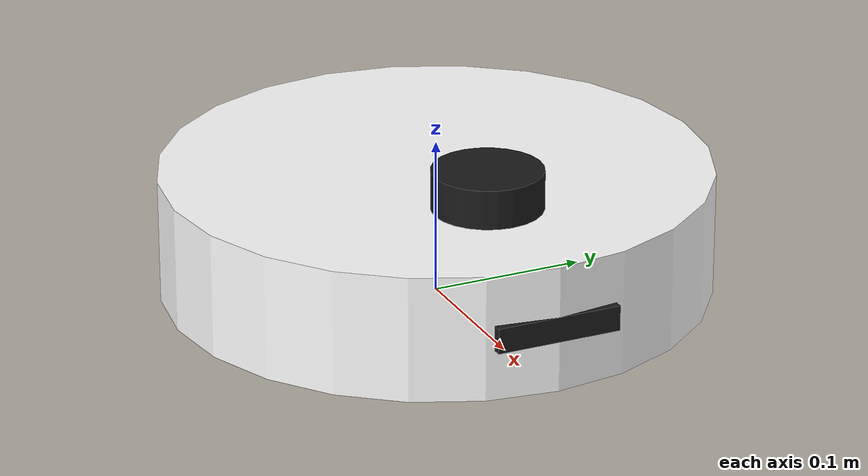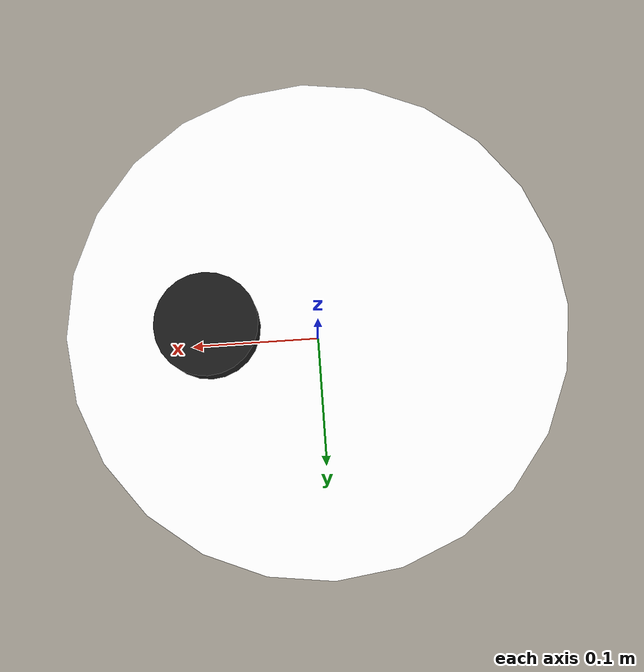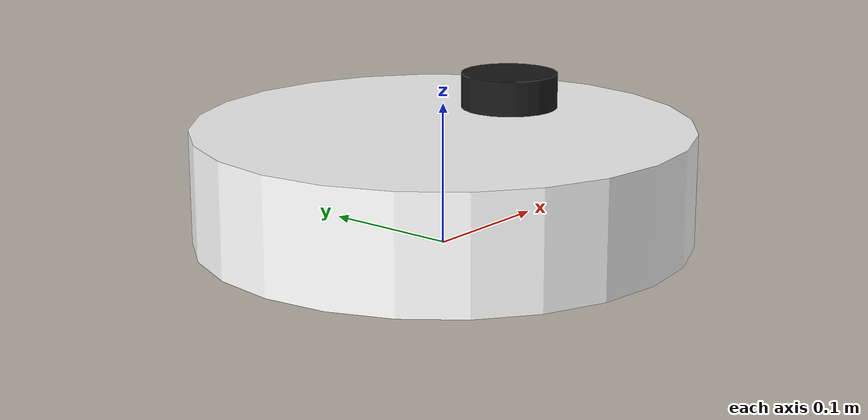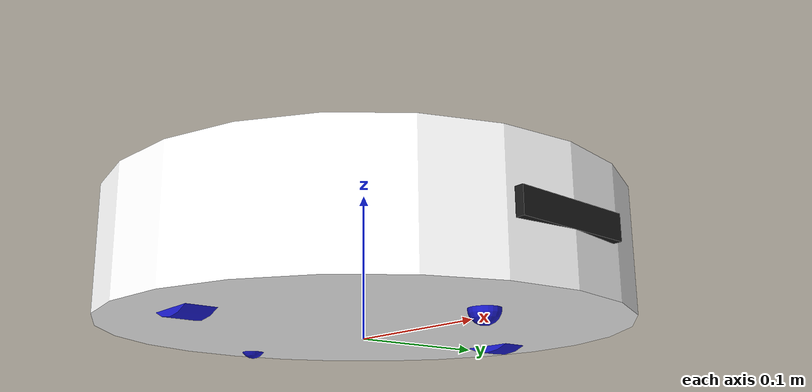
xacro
<?xml version="1.0"?>
<robot xmlns:xacro="http://www.ros.org/wiki/xacro" name="mercury">

<xacro:property name="chassis_radius"   value="0.175"/>
<xacro:property name="chassis_width"    value="0.16" />
<xacro:property name="chassis_length"   value="0.24" />
<xacro:property name="chassis_height"   value="0.08" />
<xacro:property name="wheel_separation" value="0.26" />
<xacro:property name="wheel_radius"     value="0.04" />
<xacro:property name="wheel_offset"     value="0.005" />
<xacro:property name="wheel_width"      value="0.02" />
<xacro:property name="sphere_radius"    value="0.01" />
<xacro:property name="caster_separation"    value="0.29" />
<xacro:property name="caster_offset"    value="-0.035" />
<xacro:property name="lidar_radius" value="0.035"/>
<xacro:property name="lidar_length" value="0.03"/>
<xacro:property name="camera_length" value="0.02"/>
<xacro:property name="camera_width" value="0.016"/>
<xacro:property name="camera_height" value="0.08"/>
<xacro:property name="base_offset"      value="0.00" />
<xacro:property name="footprint_z"      value="0.045" />

  <!-- LINKS -->
  <link name="base_footprint"/>

    <link name="base_link">
    <visual>
      <geometry>
        <cylinder length="${chassis_height}" radius="${chassis_radius}" />
      </geometry>
      <origin rpy="0 0 0" xyz="0 0 0"/>
      <material name="white">
        <color rgba="1 1 1 1"/>
      </material>
    </visual>

    <collision>
      <geometry>
        <cylinder length="${chassis_height}" radius="${chassis_radius}" />
      </geometry>
      <origin rpy="0 0 0" xyz="${base_offset} 0 0"/>
    </collision>

    <inertial>
      <mass value="4.2"/>
      <inertia ixx="0.034396" ixy="0.0" ixz="0.0" iyy="0.034396" iyz="0.0" izz="0.06431"/>
    </inertial>
  </link>

  <link name="left_wheel">
    <visual>
      <geometry>
        <cylinder length="${wheel_width}" radius="${wheel_radius}" />
      </geometry>
      <origin rpy="0 0 0" xyz="0 0 0"/>
      <material name="blue">
        <color rgba="0.1 0.1 0.8 1"/>
      </material>
    </visual>

    <collision>
      <geometry>
        <cylinder length="${wheel_width}" radius="${wheel_radius}" />
      </geometry>
      <origin rpy="0 0 0" xyz="0 0 0"/>
    </collision>

    <inertial>
      <mass value="0.1"/>
      <inertia ixx="0.00004333" ixy="0.0" ixz="0.0" iyy="0.00004333" iyz="0.0" izz="0.00008"/>
    </inertial>
  </link>

  <link name="right_wheel">
    <visual>
      <geometry>
        <cylinder length="${wheel_width}" radius="${wheel_radius}" />
      </geometry>
      <origin rpy="0 0 0" xyz="0 0 0"/>
      <material name="blue">
        <color rgba="0.1 0.1 0.8 1"/>
      </material>
    </visual>

    <collision>
      <geometry>
        <cylinder length="${wheel_width}" radius="${wheel_radius}" />
      </geometry>
      <origin rpy="0 0 0" xyz="0 0 0"/>
    </collision>

    <inertial>
      <mass value="0.1"/>
      <inertia ixx="0.00004333" ixy="0.0" ixz="0.0" iyy="0.00004333" iyz="0.0" izz="0.00008"/>
    </inertial>
  </link>

  <link name="front_caster">
    <visual>
      <geometry>
        <sphere radius="${sphere_radius}" />
      </geometry>
      <origin rpy="0 0 0" xyz="0 0 0"/>
      <material name="blue">
        <color rgba="0.1 0.1 0.8 1"/>
      </material>
    </visual>

    <collision>
      <geometry>
        <sphere radius="${sphere_radius}" />
      </geometry>
      <origin rpy="0 0 0" xyz="0 0 0"/>
    </collision>

    <inertial>
      <mass value="0.06"/>
      <inertia ixx="0.0000024" ixy="0.0" ixz="0.0" iyy="0.0000024" iyz="0.0" izz="0.0000024"/>
    </inertial>
  </link>

  <link name="back_caster">
    <visual>
      <geometry>
        <sphere radius="${sphere_radius}" />
      </geometry>
      <origin rpy="0 0 0" xyz="0 0 0"/>
      <material name="blue">
        <color rgba="0.1 0.1 0.8 1"/>
      </material>
    </visual>

    <collision>
      <geometry>
        <sphere radius="${sphere_radius}" />
      </geometry>
      <origin rpy="0 0 0" xyz="0 0 0"/>
    </collision>

    <inertial>
      <mass value="0.06"/>
      <inertia ixx="0.0000024" ixy="0.0" ixz="0.0" iyy="0.0000024" iyz="0.0" izz="0.0000024"/>
    </inertial>
  </link>

  <link name="imu_link">
  <!-- Frame to attach an IMU to -->
  </link>

  <link name="lidar_link">
    <visual>
      <geometry>
        <cylinder length="${lidar_length}" radius="${lidar_radius}" />
      </geometry>
      <origin rpy="0 0 0" xyz="0 0 -0.005"/>
      <material name="black">
        <color rgba="0.1 0.1 0.1 1"/>
      </material>
    </visual>

    <collision>
      <geometry>
        <cylinder length="${lidar_length}" radius="${lidar_radius}" />
      </geometry>
      <origin rpy="0 0 0" xyz="0 0 -0.005"/>
    </collision>

    <inertial>
      <mass value="0.2"/>
      <inertia ixx="0.00007625" ixy="0.0" ixz="0.0" iyy="0.00007625" iyz="0.0" izz="0.0001225"/>
    </inertial>
  </link>

  <!-- Depth Camera -->
  <link name="depth">
    <visual>
      <geometry>
        <box size="${camera_length} ${camera_height} ${camera_width}"/>
      </geometry>
      <origin rpy="0 0 0" xyz="0 0 0"/>
      <material name="black">
        <color rgba="0.1 0.1 0.1 1"/>
      </material>
    </visual>

    <collision>
      <geometry>
        <box size="${camera_length} ${camera_height} ${camera_width}"/>
      </geometry>
      <origin rpy="0 0 0" xyz="0 0 0"/>
    </collision>

    <inertial>
      <mass value="0.08"/>
      <inertia ixx="0.00004437" ixy="0.0" ixz="0.0" iyy="0.00004373" iyz="0.0" izz="0.00004533"/>
    </inertial>
  </link>

  <!-- JOINTS -->
  <joint name="base_footprint_joint" type="fixed">
    <parent link="base_footprint"/>
    <child link="base_link"/>
    <origin xyz="${base_offset} 0 ${footprint_z}" rpy="0 0 0"/>
  </joint>

  <joint name="left_wheel_joint" type="continuous">
    <parent link="base_link"/>
    <child link="left_wheel"/>
    <origin xyz="0 ${wheel_separation/2} -${wheel_offset}" rpy="-${pi/2} 0 0"/>
    <axis xyz="0 0 1"/>
  </joint>

  <joint name="right_wheel_joint" type="continuous">
    <parent link="base_link"/>
    <child link="right_wheel"/>
    <origin xyz="0 -${wheel_separation/2} -${wheel_offset}" rpy="-${pi/2} 0 0"/>
    <axis xyz="0 0 1"/>
  </joint>

  <joint name="front_wheel_joint" type="fixed">
    <parent link="base_link"/>
    <child link="front_caster"/>
    <origin xyz="${base_offset + (chassis_length/2) - sphere_radius} 0 -${chassis_height/2}" rpy="0 0 0"/>
  </joint>

  <joint name="back_caster_joint" type="fixed">
    <parent link="base_link"/>
    <child link="back_caster"/>
    <origin xyz="-${caster_separation/2} 0 ${caster_offset}" rpy="0 0 0"/>
  </joint>

  <joint name="imu_joint" type="fixed">
    <parent link="base_link"/>
    <child link="imu_link"/>
    <origin xyz="0 0 0" rpy="0 0 0"/>
  </joint>

  <joint name="lidar_joint" type="fixed">
    <parent link="base_link"/>
    <child link="lidar_link"/>
    <origin xyz="0.075 0 0.055" rpy="0 0 0"/>
  </joint>

  <joint name="camera_joint" type="fixed">
    <parent link="base_link"/>
    <child link="depth"/>
    <origin xyz="0.165 0 0" rpy="0 0 0"/>
  </joint>

  <!-- GAZEBO PLUGINS -->
  <!-- Differential Drive - https://gazebosim.org/api/gazebo/4.5/classignition_1_1gazebo_1_1systems_1_1DiffDrive.html -->
  <gazebo>
    <plugin filename="ignition-gazebo-diff-drive-system" name="ignition::gazebo::systems::DiffDrive">
      <!-- Wheel Joints -->
      <left_joint>left_wheel_joint</left_joint>
      <right_joint>right_wheel_joint</right_joint>

      <!-- Kinematics -->
      <wheel_separation>${wheel_separation}</wheel_separation>
      <wheel_radius>${wheel_radius}</wheel_radius>

      <odom_publish_frequency>50</odom_publish_frequency>

      <!-- TF Frames -->
      <frame_id>/odom_raw</frame_id>
      <child_frame_id>/base_footprint</child_frame_id>

      <!-- topics -->
    </plugin>
  </gazebo>

  <gazebo>
      <plugin filename="ignition-gazebo-joint-state-publisher-system" name="ignition::gazebo::systems::JointStatePublisher">
        <update_rate>50</update_rate>
        <joint_name>left_wheel_joint</joint_name>
        <joint_name>right_wheel_joint</joint_name>
      </plugin>
  </gazebo>

  <gazebo reference="front_caster">
    <mu1 value="0.001"/>
    <mu2 value="0.001"/>
  </gazebo>

    <gazebo reference="back_caster">
    <mu1 value="0.001"/>
    <mu2 value="0.001"/>
  </gazebo>

  <gazebo reference="right_wheel">
    <mu1 value="0.5"/>
    <mu2 value="0.5"/>
  </gazebo>

  <gazebo reference="left_wheel">
    <mu1 value="0.5"/>
    <mu2 value="0.5"/>
  </gazebo>

  <gazebo reference="lidar_link">
    <sensor type="gpu_lidar" name="generic_lidar_sensor">

      <topic>/model/mercury/scan</topic>
      <frame_id>lidar_link</frame_id>
      <ignition_frame_id>lidar_link</ignition_frame_id>

      <update_rate>10.0</update_rate>
      <ray>
        <scan>
          <horizontal>
            <samples>1024</samples>
            <resolution>1</resolution>
            <min_angle>-${pi*0.75}</min_angle>
            <max_angle>${pi*0.75}</max_angle>
          </horizontal>
        </scan>
        <range>
          <min>0.20</min>
          <max>20.0</max>
          <resolution>0.03</resolution>
        </range>
        <noise>
          <type>gaussian</type>
          <mean>0.0</mean>
          <stddev>0.001</stddev>
        </noise>
      </ray>
      <always_on>1</always_on>
      <visualize>false</visualize>
    </sensor>
  </gazebo>

  <gazebo>
    <plugin filename="libignition-gazebo-sensors-system.so" name="ignition::gazebo::systems::Sensors">
      <render_engine>ogre2</render_engine>
    </plugin>
  </gazebo>

  <!-- Depth Camera -->
  <gazebo reference="depth_link">
      <sensor name="depth" type="depth">
          <topic>/model/mercury/depth</topic>
          <frame_id>depth_link</frame_id>
          <ignition_frame_id>depth_link</ignition_frame_id>
          <always_on>true</always_on>
          <update_rate>60</update_rate>
          <camera name="realsense_depth_camera">
              <horizontal_fov>1.48353</horizontal_fov>
              <vertical_fov>1.01229</vertical_fov>
              <image>
                  <width>1280</width>
                  <height>720</height>
                  <format>B8G8R8</format>
              </image>
              <clip>
                  <near>0.03</near>
                  <far>4</far>
              </clip>
          </camera>
      </sensor>
  </gazebo>

  <gazebo reference="imu_link">
    <sensor name="imu_sensor" type="imu">
      <topic>/model/mercury/imu</topic>
      <frame_id>imu_link</frame_id>
      <ignition_frame_id>imu_link</ignition_frame_id>
      <plugin filename="libignition-gazebo-imu-system.so" name="ignition::gazebo::systems::Imu">
        <initial_orientation_as_reference>false</initial_orientation_as_reference>
      </plugin>
      <always_on>true</always_on>
      <update_rate>100</update_rate>
      <visualize>true</visualize>
     <imu>
     	<angular_velocity>
     	  <x>
     	    <noise type="gaussian">
              <mean>0.0</mean>
              <stddev>2e-4</stddev>
              <bias_mean>0.0000075</bias_mean>
              <bias_stddev>0.0000008</bias_stddev>
            </noise>
          </x>
          <y>
            <noise type="gaussian">
              <mean>0.0</mean>
              <stddev>2e-4</stddev>
              <bias_mean>0.0000075</bias_mean>
              <bias_stddev>0.0000008</bias_stddev>
            </noise>
          </y>
          <z>
            <noise type="gaussian">
              <mean>0.0</mean>
              <stddev>2e-4</stddev>
              <bias_mean>0.0000075</bias_mean>
              <bias_stddev>0.0000008</bias_stddev>
            </noise>
          </z>
        </angular_velocity>
        <linear_acceleration>
          <x>
            <noise type="gaussian">
              <mean>0.0</mean>
              <stddev>1.7e-2</stddev>
              <bias_mean>0.1</bias_mean>
              <bias_stddev>0.001</bias_stddev>
            </noise>
          </x>
          <y>
            <noise type="gaussian">
              <mean>0.0</mean>
              <stddev>1.7e-2</stddev>
              <bias_mean>0.1</bias_mean>
              <bias_stddev>0.001</bias_stddev>
            </noise>
          </y>
          <z>
            <noise type="gaussian">
              <mean>0.0</mean>
              <stddev>1.7e-2</stddev>
              <bias_mean>0.1</bias_mean>
              <bias_stddev>0.001</bias_stddev>
            </noise>
          </z>
        </linear_acceleration>
      </imu>
    </sensor>
  </gazebo>

</robot>
